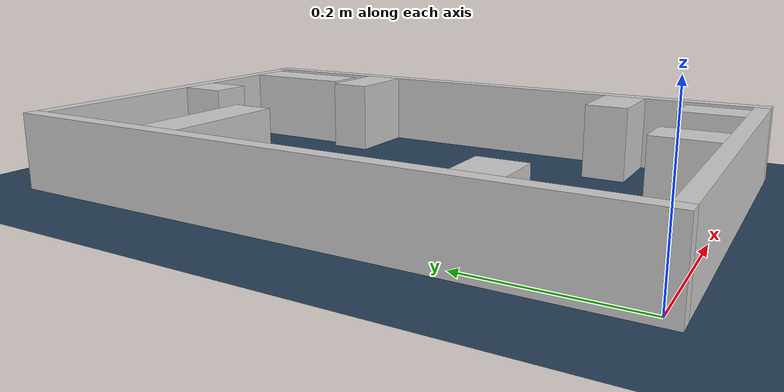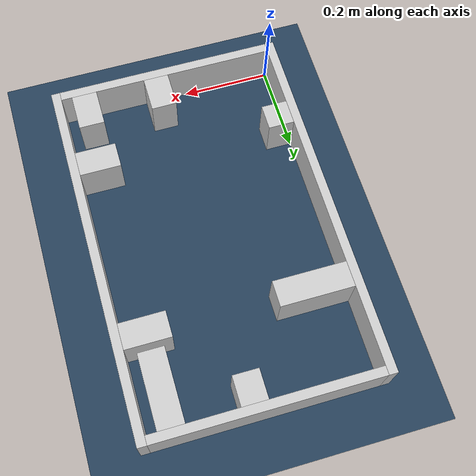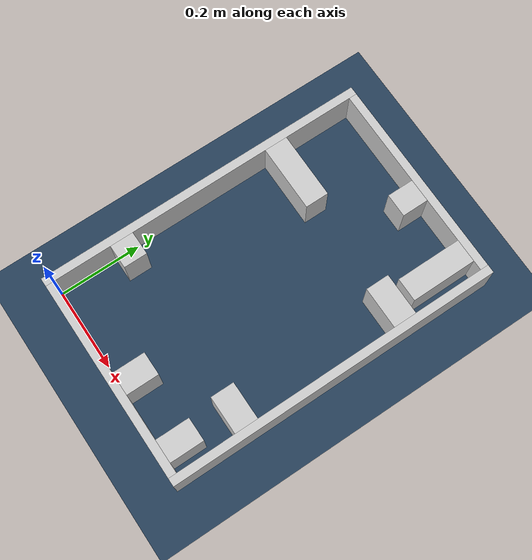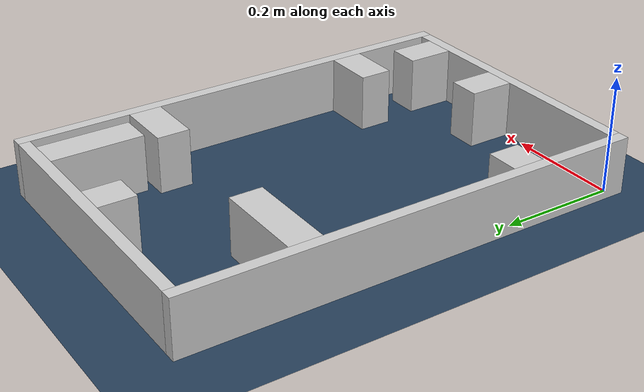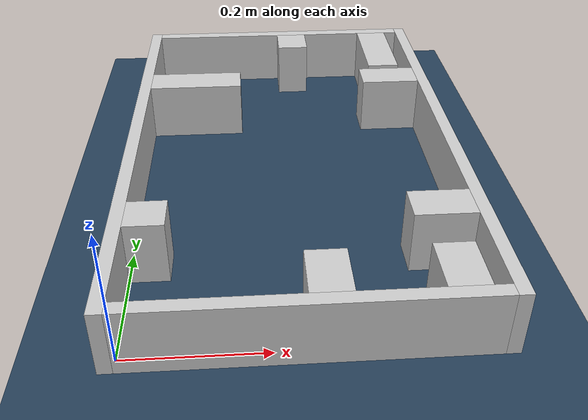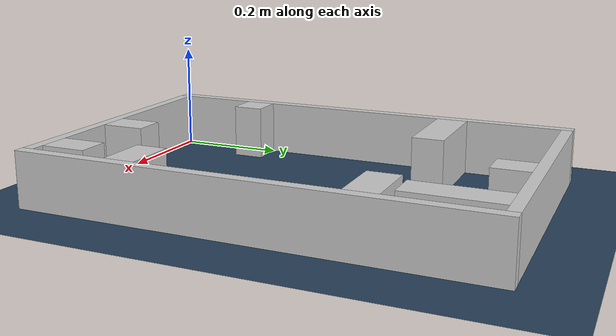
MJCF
<?xml version="1.0" ?>
<mujoco model="generated_real_template">
  <compiler angle="degree"/>
  <option timestep="0.002" integrator="implicitfast" iterations="100" cone="elliptic"/>
  <default>
    <geom density="1"/>
  </default>
  <asset>
    <texture builtin="gradient" height="3072" rgb1="0.3 0.5 0.7" rgb2="0 0 0" type="skybox" width="512"/>
    <texture builtin="checker" height="300" mark="edge" markrgb="0.8 0.8 0.8" name="groundplane" rgb1="0.2 0.3 0.4" rgb2="0.1 0.2 0.3" type="2d" width="300"/>
    <material name="groundplane" reflectance="0.2" texrepeat="5 5" texture="groundplane" texuniform="true"/>
  </asset>
  <worldbody>
    <light dir="0 0 -1" directional="true" pos="0 0 1.5"/>
    <geom name="floor" type="plane" condim="4" friction="0.5 0.005 0.001" material="groundplane" size="0 0 0.05"/>
    <body name="walls">
      <geom name="wall_boundary_left" type="box" condim="4" friction="1.0 0.005 0.0001" rgba="0.8 0.8 0.8 1" pos="-0.010000 0.387500 0.050000" euler="0 0 0.000000" size="0.010000 0.407500 0.050000"/>
      <geom name="wall_boundary_right" type="box" condim="4" friction="1.0 0.005 0.0001" rgba="0.8 0.8 0.8 1" pos="0.500000 0.387500 0.050000" euler="0 0 0.000000" size="0.010000 0.407500 0.050000"/>
      <geom name="wall_boundary_bottom" type="box" condim="4" friction="1.0 0.005 0.0001" rgba="0.8 0.8 0.8 1" pos="0.245000 -0.010000 0.050000" euler="0 0 0.000000" size="0.245000 0.010000 0.050000"/>
      <geom name="wall_boundary_top" type="box" condim="4" friction="1.0 0.005 0.0001" rgba="0.8 0.8 0.8 1" pos="0.245000 0.785000 0.050000" euler="0 0 0.000000" size="0.245000 0.010000 0.050000"/>
      <geom name="wall_inner_1_1" type="box" condim="4" friction="1.0 0.005 0.0001" rgba="0.8 0.8 0.8 1" pos="0.437542 0.041155 0.050000" euler="0 0 90.000000" size="0.041155 0.028500 0.050000"/>
      <geom name="wall_inner_1_2" type="box" condim="4" friction="1.0 0.005 0.0001" rgba="0.8 0.8 0.8 1" pos="0.437542 0.695588 0.050000" euler="0 0 90.000000" size="0.079412 0.028500 0.050000"/>
      <geom name="wall_inner_2_1" type="box" condim="4" friction="1.0 0.005 0.0001" rgba="0.8 0.8 0.8 1" pos="0.029048 0.170690 0.050000" euler="0 0 0.000000" size="0.029048 0.028500 0.050000"/>
      <geom name="wall_inner_2_2" type="box" condim="4" friction="1.0 0.005 0.0001" rgba="0.8 0.8 0.8 1" pos="0.444173 0.170690 0.050000" euler="0 0 0.000000" size="0.045827 0.028500 0.050000"/>
      <geom name="wall_inner_3_1" type="box" condim="4" friction="1.0 0.005 0.0001" rgba="0.8 0.8 0.8 1" pos="0.269073 0.039493 0.050000" euler="0 0 90.000000" size="0.039493 0.028500 0.050000"/>
      <geom name="wall_inner_3_2" type="box" condim="4" friction="1.0 0.005 0.0001" rgba="0.8 0.8 0.8 1" pos="0.269073 0.742774 0.050000" euler="0 0 90.000000" size="0.032226 0.028500 0.050000"/>
      <geom name="wall_inner_4_1" type="box" condim="4" friction="1.0 0.005 0.0001" rgba="0.8 0.8 0.8 1" pos="0.081204 0.574640 0.050000" euler="0 0 0.000000" size="0.081204 0.028500 0.050000"/>
      <geom name="wall_inner_4_2" type="box" condim="4" friction="1.0 0.005 0.0001" rgba="0.8 0.8 0.8 1" pos="0.439183 0.574640 0.050000" euler="0 0 0.000000" size="0.050817 0.028500 0.050000"/>
    </body>
  </worldbody>
</mujoco>
